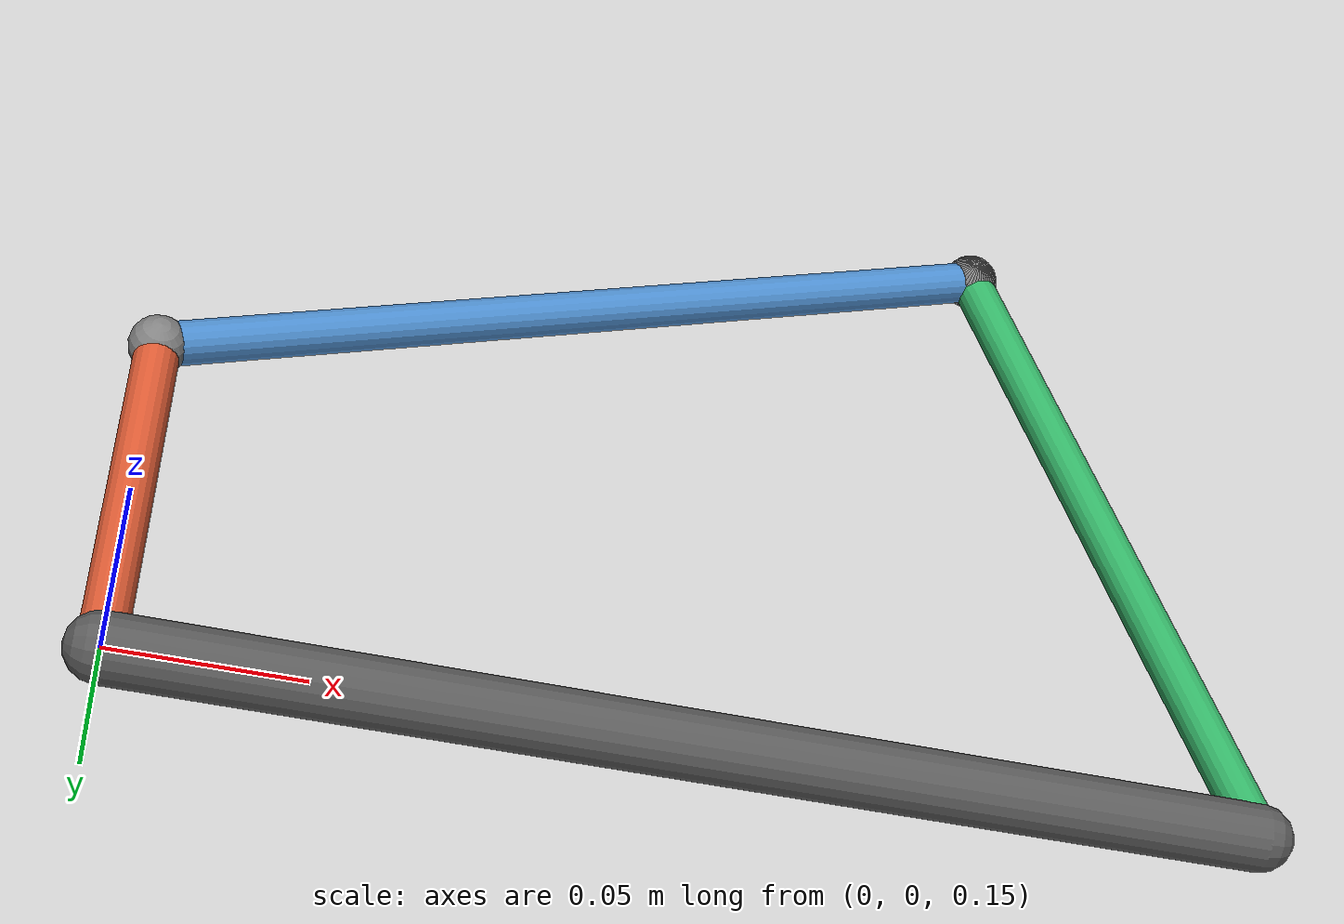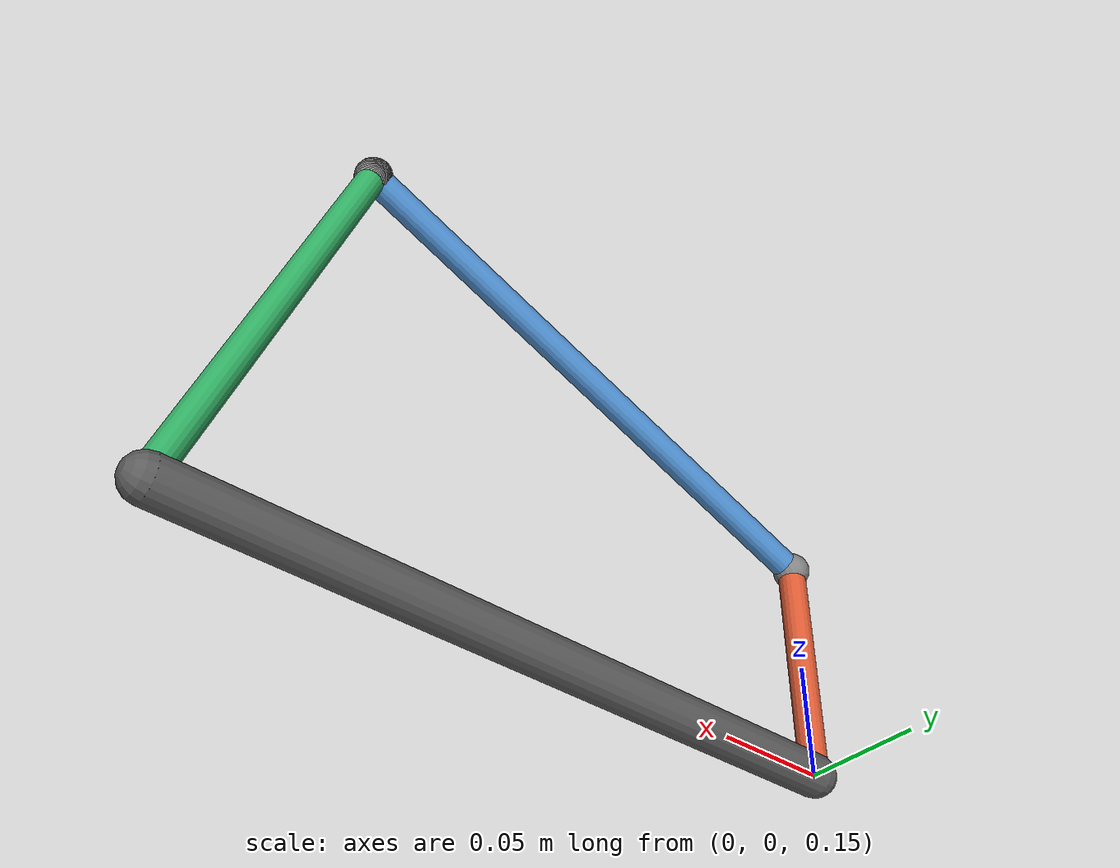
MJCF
<mujoco model="force_transfer_fourbar">
  <compiler angle="radian" />
  <option gravity="0 0 0" timestep=".0005" integrator="implicitfast" jacobian="dense" solver="Newton" iterations="100" tolerance="1e-12">
    <flag contact="disable" island="disable" energy="enable" diagexact="enable" />
  </option>
  <default>
    <joint limited="false" damping="0" armature="0" />
    <geom contype="0" conaffinity="0" />
    <site size=".008" />
  </default>
  <worldbody>
    <body name="frame" pos="0 0 .15" quat="0.70710678118654757 0.70710678118654746 0 0">
      <geom type="capsule" fromto="0 0 0 0.29999999999999999 0 0" size=".009" rgba=".35 .35 .35 1" />
      <body name="crank" pos="0 0 0" quat="0.70710678118654757 0 0 0.70710678118654746">
        <joint name="input" axis="0 0 1" pos="0 0 0" />
        <inertial pos="0.050000000000000003 0 0" mass="0.3" diaginertia="5.4e-06 0.00025270000000000007 0.00025270000000000007" />
        <geom type="capsule" fromto="0 0 0 0.10000000000000001 0 0" size="0.006" rgba=".85 .35 .2 1" />
        <site name="input_tip" pos="0.10000000000000001 0 0" />
        <body name="coupler" pos="0.10000000000000001 0 0" quat="0.82304692171648586 0 0 -0.56797338375404249">
          <joint name="coupler" axis="0 0 1" pos="0 0 0" />
          <inertial pos="0.125 0 0" mass="0.2" diaginertia="3.6000000000000003e-06 0.0010434666666666668 0.0010434666666666668" />
          <geom type="capsule" fromto="0 0 0 0.25 0 0" size="0.006" rgba=".3 .55 .8 1" />
          <site name="coupler_tip" pos="0.25 0 0" />
        </body>
      </body>
      <body name="rocker" pos="0.29999999999999999 0 0" quat="0.57821789266207979 0 0 0.81588238650275058">
        <joint name="output" axis="0 0 1" pos="0 0 0" />
        <inertial pos="0.10000000000000001 0 0" mass="0.4" diaginertia="7.2000000000000005e-06 0.0013369333333333336 0.0013369333333333336" />
        <geom type="capsule" fromto="0 0 0 0.20000000000000001 0 0" size="0.006" rgba=".2 .7 .4 1" />
        <site name="output_tip" pos="0.20000000000000001 0 0" />
      </body>
    </body>
    <light pos=".2 -1 1" dir="0 1 -1" />
  </worldbody>
  <equality>
    <connect site1="coupler_tip" site2="output_tip" name="loop" solref="0.010000000000000005 1" solimp="0.99 0.99 .001" />
  </equality>
  <actuator>
    <position name="drive" joint="input" kp="500" kv="5" />
  </actuator>
  <custom>
    <numeric name="reference" data="1.5707963267948966 1.9085072020178422 0.36271348012230697 0.20000000000000001 0.25" />
  </custom>
  <visual>
    <headlight ambient=".5 .5 .5" />
  </visual>
</mujoco>
